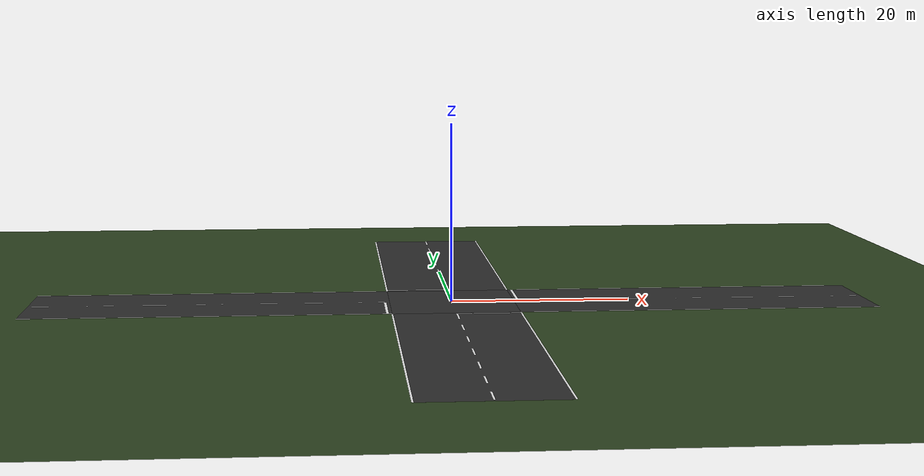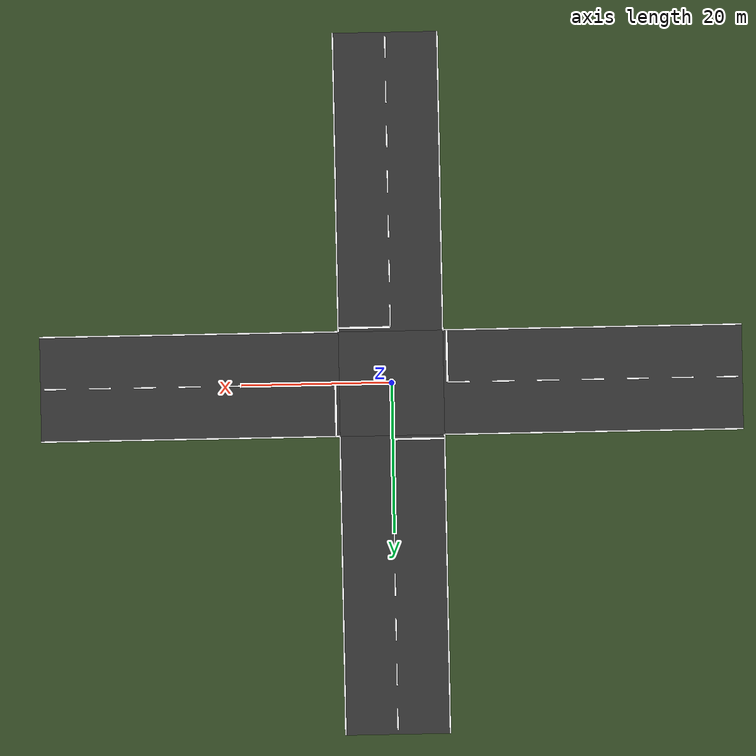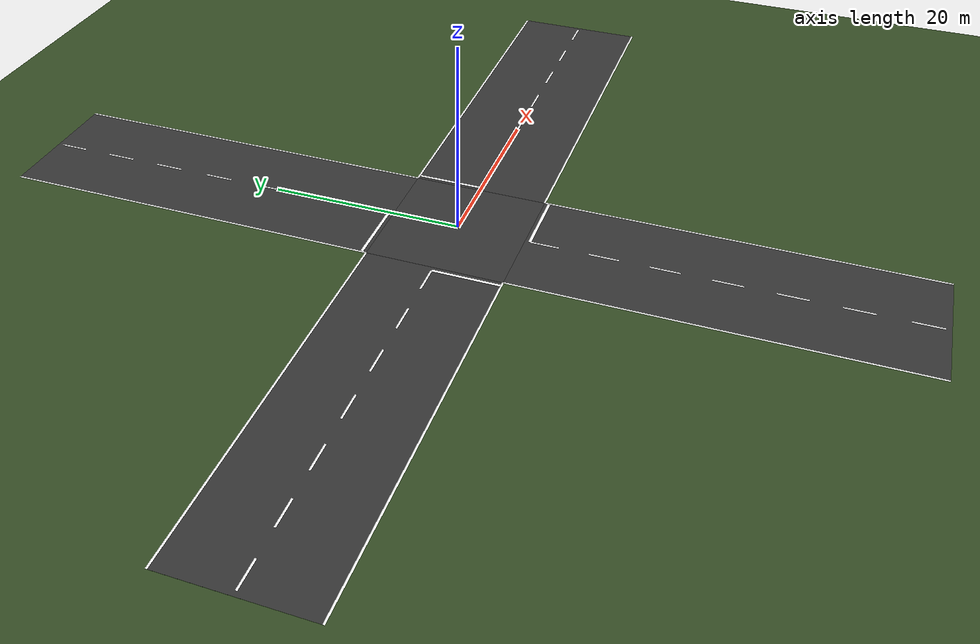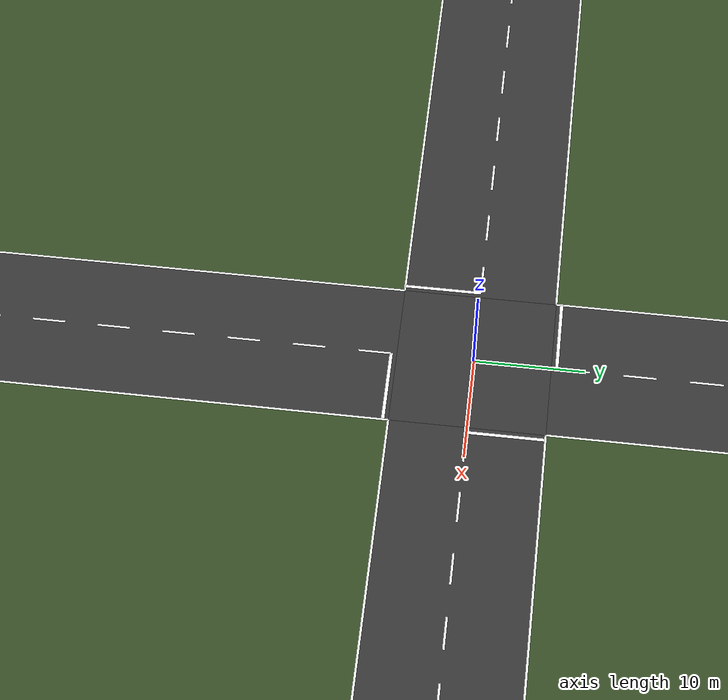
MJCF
<mujoco>
  <!-- Junction extends ±47 m in x and y -->
  <statistic center="0 0 0" extent="50" meansize="0.5"/>

  <visual>
    <headlight diffuse="0.6 0.6 0.6" ambient="0.3 0.3 0.3" specular="0 0 0"/>
    <rgba haze="0.15 0.25 0.35 1"/>
    <global azimuth="-20" elevation="-20" ellipsoidinertia="true"/>
  </visual>

  <asset>
    <texture type="skybox" builtin="gradient" rgb1="0.3 0.5 0.7" rgb2="0 0 0"
             width="512" height="3072"/>
    <!-- Grass/earth background outside the road -->
    <texture type="2d" name="groundplane" builtin="checker" mark="edge"
             rgb1="0.22 0.32 0.16" rgb2="0.18 0.26 0.12"
             markrgb="0.28 0.38 0.20" width="300" height="300"/>
    <material name="groundplane" texture="groundplane" texuniform="true"
              texrepeat="25 25" reflectance="0.05"/>
    <!-- Asphalt road surface -->
    <material name="road"          rgba="0.20 0.20 0.20 1"/>
    <!-- White road markings -->
    <material name="marking_white" rgba="1.00 1.00 1.00 1"/>
  </asset>

  <worldbody>
    <!-- Overhead directional light -->
    <light pos="0 0 40" dir="0 0 -1" directional="true"
           diffuse="0.8 0.8 0.8" ambient="0.4 0.4 0.4"/>

    <!-- Infinite grass/earth ground plane -->
    <geom name="floor" size="0 0 0.05" type="plane" material="groundplane"/>

    <!-- Junction centre box -->
    <geom name="road_center" type="box" pos="0 0 0.001" size="7 7 0.001"
          material="road" contype="0" conaffinity="0"/>

    <!-- North arm  (y: 7 → 47) -->
    <geom name="road_north" type="box" pos="0 27 0.001" size="7 20 0.001"
          material="road" contype="0" conaffinity="0"/>

    <!-- South arm  (y: -47 → -7) -->
    <geom name="road_south" type="box" pos="0 -27 0.001" size="7 20 0.001"
          material="road" contype="0" conaffinity="0"/>

    <!-- East arm   (x: 7 → 47) -->
    <geom name="road_east" type="box" pos="27 0 0.001" size="20 7 0.001"
          material="road" contype="0" conaffinity="0"/>

    <!-- West arm   (x: -47 → -7) -->
    <geom name="road_west" type="box" pos="-27 0 0.001" size="20 7 0.001"
          material="road" contype="0" conaffinity="0"/>

    <!-- North arm -->
    <geom name="edge_north_W" type="box" pos="-7  27 0.002" size="0.1 20 0.001"
          material="marking_white" contype="0" conaffinity="0"/>
    <geom name="edge_north_E" type="box" pos=" 7  27 0.002" size="0.1 20 0.001"
          material="marking_white" contype="0" conaffinity="0"/>

    <!-- South arm -->
    <geom name="edge_south_W" type="box" pos="-7 -27 0.002" size="0.1 20 0.001"
          material="marking_white" contype="0" conaffinity="0"/>
    <geom name="edge_south_E" type="box" pos=" 7 -27 0.002" size="0.1 20 0.001"
          material="marking_white" contype="0" conaffinity="0"/>

    <!-- East arm -->
    <geom name="edge_east_N" type="box" pos=" 27  7 0.002" size="20 0.1 0.001"
          material="marking_white" contype="0" conaffinity="0"/>
    <geom name="edge_east_S" type="box" pos=" 27 -7 0.002" size="20 0.1 0.001"
          material="marking_white" contype="0" conaffinity="0"/>

    <!-- West arm -->
    <geom name="edge_west_N" type="box" pos="-27  7 0.002" size="20 0.1 0.001"
          material="marking_white" contype="0" conaffinity="0"/>
    <geom name="edge_west_S" type="box" pos="-27 -7 0.002" size="20 0.1 0.001"
          material="marking_white" contype="0" conaffinity="0"/>

    <!-- North arm  (x=0, y: 9 → 45, step 6) -->
    <geom name="dash_N_0" type="box" pos="0  9 0.002" size="0.1 1.5 0.001" material="marking_white" contype="0" conaffinity="0"/>
    <geom name="dash_N_1" type="box" pos="0 15 0.002" size="0.1 1.5 0.001" material="marking_white" contype="0" conaffinity="0"/>
    <geom name="dash_N_2" type="box" pos="0 21 0.002" size="0.1 1.5 0.001" material="marking_white" contype="0" conaffinity="0"/>
    <geom name="dash_N_3" type="box" pos="0 27 0.002" size="0.1 1.5 0.001" material="marking_white" contype="0" conaffinity="0"/>
    <geom name="dash_N_4" type="box" pos="0 33 0.002" size="0.1 1.5 0.001" material="marking_white" contype="0" conaffinity="0"/>
    <geom name="dash_N_5" type="box" pos="0 39 0.002" size="0.1 1.5 0.001" material="marking_white" contype="0" conaffinity="0"/>
    <geom name="dash_N_6" type="box" pos="0 45 0.002" size="0.1 1.5 0.001" material="marking_white" contype="0" conaffinity="0"/>

    <!-- South arm  (x=0, y: -9 → -45, step -6) -->
    <geom name="dash_S_0" type="box" pos="0  -9 0.002" size="0.1 1.5 0.001" material="marking_white" contype="0" conaffinity="0"/>
    <geom name="dash_S_1" type="box" pos="0 -15 0.002" size="0.1 1.5 0.001" material="marking_white" contype="0" conaffinity="0"/>
    <geom name="dash_S_2" type="box" pos="0 -21 0.002" size="0.1 1.5 0.001" material="marking_white" contype="0" conaffinity="0"/>
    <geom name="dash_S_3" type="box" pos="0 -27 0.002" size="0.1 1.5 0.001" material="marking_white" contype="0" conaffinity="0"/>
    <geom name="dash_S_4" type="box" pos="0 -33 0.002" size="0.1 1.5 0.001" material="marking_white" contype="0" conaffinity="0"/>
    <geom name="dash_S_5" type="box" pos="0 -39 0.002" size="0.1 1.5 0.001" material="marking_white" contype="0" conaffinity="0"/>
    <geom name="dash_S_6" type="box" pos="0 -45 0.002" size="0.1 1.5 0.001" material="marking_white" contype="0" conaffinity="0"/>

    <!-- East arm   (y=0, x: 9 → 45, step 6) -->
    <geom name="dash_E_0" type="box" pos=" 9 0 0.002" size="1.5 0.1 0.001" material="marking_white" contype="0" conaffinity="0"/>
    <geom name="dash_E_1" type="box" pos="15 0 0.002" size="1.5 0.1 0.001" material="marking_white" contype="0" conaffinity="0"/>
    <geom name="dash_E_2" type="box" pos="21 0 0.002" size="1.5 0.1 0.001" material="marking_white" contype="0" conaffinity="0"/>
    <geom name="dash_E_3" type="box" pos="27 0 0.002" size="1.5 0.1 0.001" material="marking_white" contype="0" conaffinity="0"/>
    <geom name="dash_E_4" type="box" pos="33 0 0.002" size="1.5 0.1 0.001" material="marking_white" contype="0" conaffinity="0"/>
    <geom name="dash_E_5" type="box" pos="39 0 0.002" size="1.5 0.1 0.001" material="marking_white" contype="0" conaffinity="0"/>
    <geom name="dash_E_6" type="box" pos="45 0 0.002" size="1.5 0.1 0.001" material="marking_white" contype="0" conaffinity="0"/>

    <!-- West arm   (y=0, x: -9 → -45, step -6) -->
    <geom name="dash_W_0" type="box" pos=" -9 0 0.002" size="1.5 0.1 0.001" material="marking_white" contype="0" conaffinity="0"/>
    <geom name="dash_W_1" type="box" pos="-15 0 0.002" size="1.5 0.1 0.001" material="marking_white" contype="0" conaffinity="0"/>
    <geom name="dash_W_2" type="box" pos="-21 0 0.002" size="1.5 0.1 0.001" material="marking_white" contype="0" conaffinity="0"/>
    <geom name="dash_W_3" type="box" pos="-27 0 0.002" size="1.5 0.1 0.001" material="marking_white" contype="0" conaffinity="0"/>
    <geom name="dash_W_4" type="box" pos="-33 0 0.002" size="1.5 0.1 0.001" material="marking_white" contype="0" conaffinity="0"/>
    <geom name="dash_W_5" type="box" pos="-39 0 0.002" size="1.5 0.1 0.001" material="marking_white" contype="0" conaffinity="0"/>
    <geom name="dash_W_6" type="box" pos="-45 0 0.002" size="1.5 0.1 0.001" material="marking_white" contype="0" conaffinity="0"/>

    <!-- Southbound traffic approaching from north, stops at y=+7.5, x: -7→0 -->
    <geom name="stop_N_SB" type="box" pos="-3.5  7.5 0.002" size="3.5 0.15 0.001"
          material="marking_white" contype="0" conaffinity="0"/>

    <!-- Northbound traffic approaching from south, stops at y=-7.5, x: 0→+7 -->
    <geom name="stop_S_NB" type="box" pos=" 3.5 -7.5 0.002" size="3.5 0.15 0.001"
          material="marking_white" contype="0" conaffinity="0"/>

    <!-- Westbound traffic approaching from east, stops at x=+7.5, y: 0→+7 -->
    <geom name="stop_E_WB" type="box" pos=" 7.5  3.5 0.002" size="0.15 3.5 0.001"
          material="marking_white" contype="0" conaffinity="0"/>

    <!-- Eastbound traffic approaching from west, stops at x=-7.5, y: -7→0 -->
    <geom name="stop_W_EB" type="box" pos="-7.5 -3.5 0.002" size="0.15 3.5 0.001"
          material="marking_white" contype="0" conaffinity="0"/>

    <frame name="world" pos="1.75 -35 0" euler="0 0 90"/>
  </worldbody>
</mujoco>
